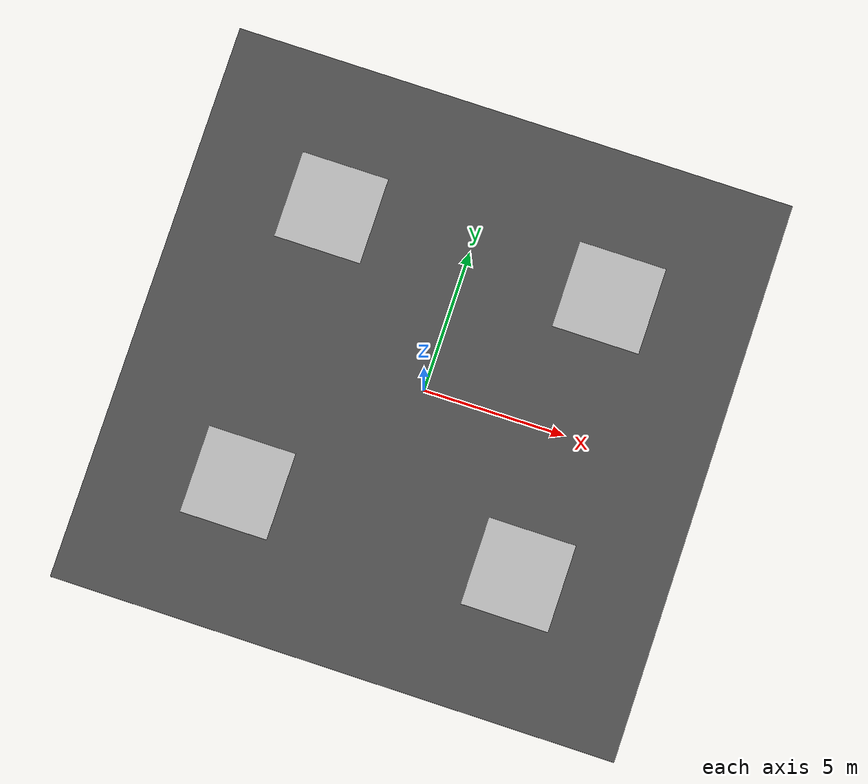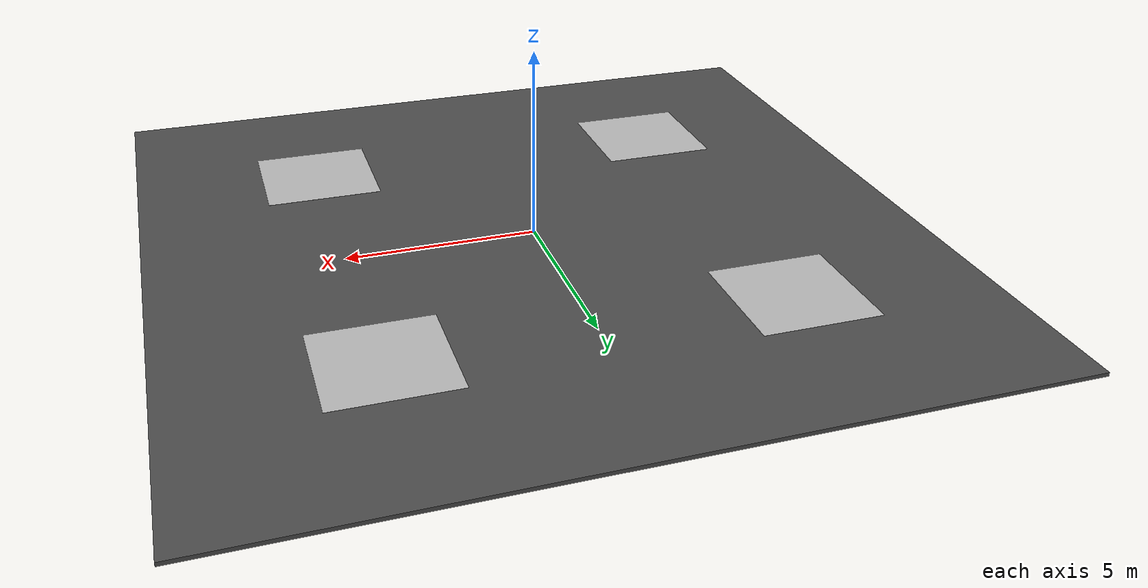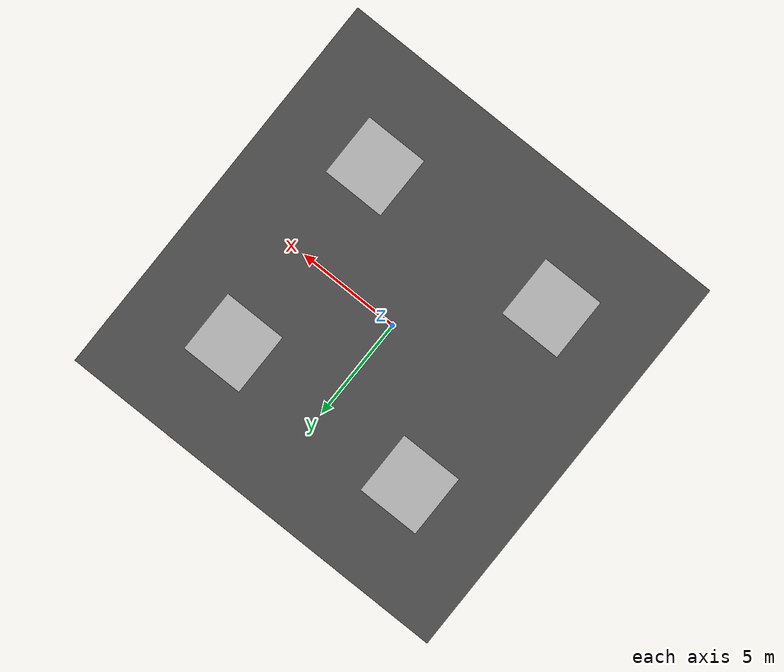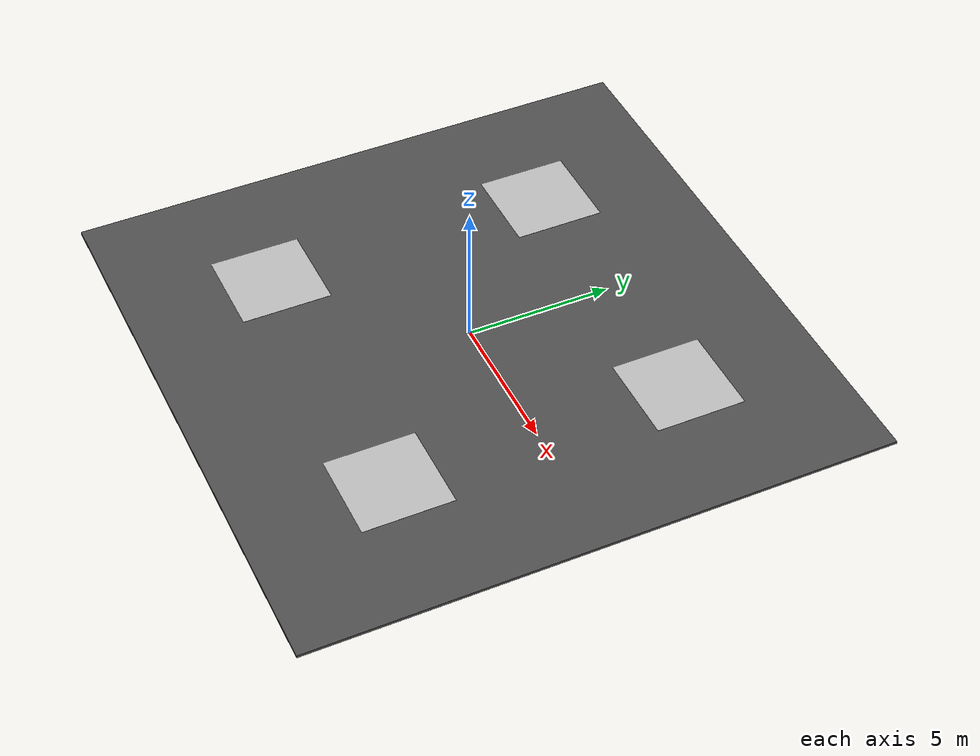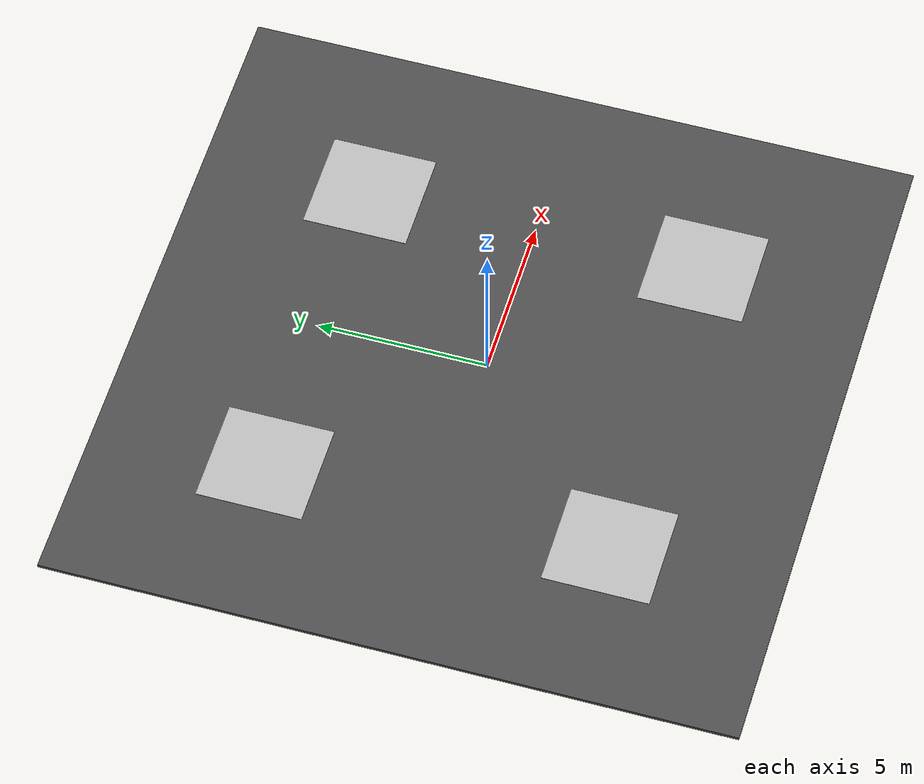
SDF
<sdf version="1.6">
 <world name="default">
  <light name="sun" type="directional">
   <pose>0 0 10 0 -0 0</pose>
   <diffuse>0.8 0.8 0.8 1</diffuse>
   <specular>0.1 0.1 0.1 1</specular>
   <attenuation>
    <range>1000</range>
    <constant>0.9</constant>
    <linear>0.01</linear>
    <quadratic>0.001</quadratic>
   </attenuation>
   <direction>-0.5 0.5 -1</direction>
  </light>
  <gravity>0 0 -9.8</gravity>
  <magnetic_field>6e-06 2.3e-05 -4.2e-05</magnetic_field>
  <atmosphere type="adiabatic"/>
  <physics name="default_physics" default="0" type="ode">
   <max_step_size>0.001</max_step_size>
   <real_time_factor>1</real_time_factor>
   <real_time_update_rate>1000</real_time_update_rate>
  </physics>
  <scene><ambient>0.4 0.4 0.4 1</ambient><background>0.7 0.7 0.7 1</background><shadows>1</shadows></scene>
  <spherical_coordinates>
   <surface_model>EARTH_WGS84</surface_model>
   <latitude_deg>0</latitude_deg>
   <longitude_deg>0</longitude_deg>
   <elevation>0</elevation>
   <heading_deg>0</heading_deg>
  </spherical_coordinates>
  <model name="asphalt_plane_0">
   <static>1</static>
   <link name="link">
    <collision name="collision"><geometry><box><size>20 20 0.1</size></box></geometry></collision>
    <visual name="visual">
     <cast_shadows>0</cast_shadows>
     <geometry><box><size>20 20 0.1</size></box></geometry>
     <material>
      <script>
       <uri>model://asphalt_plane/materials/scripts</uri>
       <uri>model://asphalt_plane/materials/textures</uri>
       <name>vrc/asphalt</name>
      </script>
     </material>
    </visual>
   </link>
  </model>
  <model name="my_ground_plane_1">
   <static>1</static>
   <link name="link">
    <collision name="collision">
     <geometry><plane><normal>0 0 1</normal><size>100 100</size></plane></geometry>
     <surface><friction><ode><mu>100</mu><mu2>50</mu2></ode></friction></surface>
    </collision>
    <visual name="visual">
     <cast_shadows>0</cast_shadows>
     <geometry><plane><normal>0 0 1</normal><size>3.1 3.1</size></plane></geometry>
     <material>
      <script>
       <uri>model://my_ground_plane/materials/scripts</uri>
       <uri>model://my_ground_plane/materials/textures/</uri>
       <name>MyGroundPlane/Image</name>
      </script>
     </material>
    </visual>
   </link>
   <pose>-5 5 0.1 0 -0 0</pose>
  </model>
  <model name="my_ground_plane_2">
   <static>1</static>
   <link name="link">
    <collision name="collision">
     <geometry><plane><normal>0 0 1</normal><size>100 100</size></plane></geometry>
     <surface><friction><ode><mu>100</mu><mu2>50</mu2></ode></friction></surface>
    </collision>
    <visual name="visual">
     <cast_shadows>0</cast_shadows>
     <geometry><plane><normal>0 0 1</normal><size>3.1 3.1</size></plane></geometry>
     <material>
      <script>
       <uri>model://my_ground_plane/materials/scripts</uri>
       <uri>model://my_ground_plane/materials/textures/</uri>
       <name>MyGroundPlane/Image</name>
      </script>
     </material>
    </visual>
   </link>
   <pose>5 5 0.1 0 -0 0</pose>
  </model>
  <model name="my_ground_plane_3">
   <static>1</static>
   <link name="link">
    <collision name="collision">
     <geometry><plane><normal>0 0 1</normal><size>100 100</size></plane></geometry>
     <surface><friction><ode><mu>100</mu><mu2>50</mu2></ode></friction></surface>
    </collision>
    <visual name="visual">
     <cast_shadows>0</cast_shadows>
     <geometry><plane><normal>0 0 1</normal><size>3.1 3.1</size></plane></geometry>
     <material>
      <script>
       <uri>model://my_ground_plane/materials/scripts</uri>
       <uri>model://my_ground_plane/materials/textures/</uri>
       <name>MyGroundPlane/Image</name>
      </script>
     </material>
    </visual>
   </link>
   <pose>-5 -5 0.1 0 -0 0</pose>
  </model>
  <model name="my_ground_plane_4">
   <static>1</static>
   <link name="link">
    <collision name="collision">
     <geometry><plane><normal>0 0 1</normal><size>100 100</size></plane></geometry>
     <surface><friction><ode><mu>100</mu><mu2>50</mu2></ode></friction></surface>
    </collision>
    <visual name="visual">
     <cast_shadows>0</cast_shadows>
     <geometry><plane><normal>0 0 1</normal><size>3.1 3.1</size></plane></geometry>
     <material>
      <script>
       <uri>model://my_ground_plane/materials/scripts</uri>
       <uri>model://my_ground_plane/materials/textures/</uri>
       <name>MyGroundPlane/Image</name>
      </script>
     </material>
    </visual>
   </link>
   <pose>5 -5 0.1 0 -0 0</pose>
  </model>
 </world>
</sdf>
